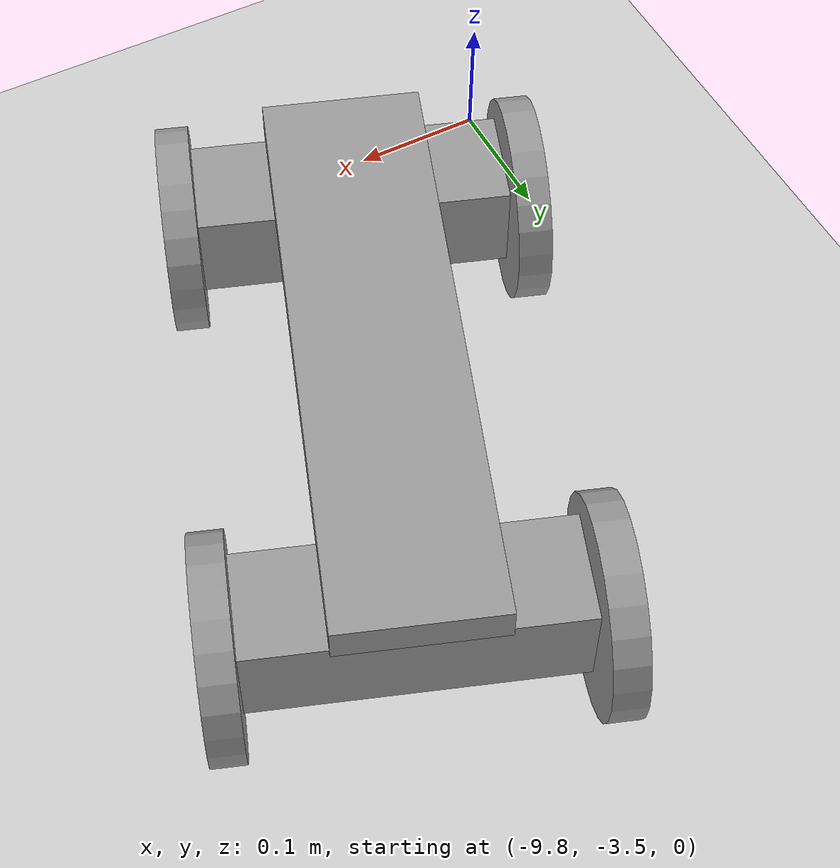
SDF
<sdf version="1.6">
 <world name="default">
  <model name="ground_plane">
   <static>1</static>
   <link name="link">
    <collision name="collision">
     <geometry><plane><normal>0 0 1</normal><size>100 100</size></plane></geometry>
     <surface><friction><ode><mu>100</mu><mu2>50</mu2></ode></friction></surface>
    </collision>
    <visual name="visual">
     <cast_shadows>0</cast_shadows>
     <geometry><plane><normal>0 0 1</normal><size>100 100</size></plane></geometry>
     <material>
      <script><uri>file://media/materials/scripts/gazebo.material</uri><name>Gazebo/Grey</name></script>
     </material>
    </visual>
   </link>
  </model>
  <model name="simple4wheel_0">
   <link name="link_0">
    <pose>0.207024 -0.003796 0.091671 0 -0 0</pose>
    <inertial>
     <mass>2</mass>
     <inertia>
      <ixx>1.72e-06</ixx>
      <ixy>0</ixy>
      <ixz>0</ixz>
      <iyy>2.368e-05</iyy>
      <iyz>0</iyz>
      <izz>2.522e-05</izz>
     </inertia>
    </inertial>
    <visual name="visual">
     <geometry><box><size>0.444653 0.117044 0.027544</size></box></geometry>
     <material>
      <lighting>1</lighting>
      <script><uri>file://media/materials/scripts/gazebo.material</uri><name>Gazebo/Grey</name></script>
      <ambient>0.3 0.3 0.3 1</ambient>
      <diffuse>0.7 0.7 0.7 1</diffuse>
      <specular>0.01 0.01 0.01 1</specular>
      <emissive>0 0 0 1</emissive>
      <shader type="vertex"><normal_map>__default__</normal_map></shader>
     </material>
    </visual>
    <collision name="collision">
     <geometry><box><size>0.444653 0.117044 0.027544</size></box></geometry>
     <surface>
      <friction>
       <ode><mu>1</mu><mu2>1</mu2><fdir1>0 0 0</fdir1><slip1>0</slip1><slip2>0</slip2></ode>
       <torsional>
        <coefficient>1</coefficient>
        <patch_radius>0</patch_radius>
        <surface_radius>0</surface_radius>
        <use_patch_radius>1</use_patch_radius>
        <ode><slip>0</slip></ode>
       </torsional>
      </friction>
      <bounce><restitution_coefficient>0</restitution_coefficient><threshold>1e+06</threshold></bounce>
      <contact>
       <collide_without_contact>0</collide_without_contact>
       <collide_without_contact_bitmask>1</collide_without_contact_bitmask>
       <collide_bitmask>1</collide_bitmask>
       <ode>
        <soft_cfm>0</soft_cfm>
        <soft_erp>0.2</soft_erp>
        <kp>1e+13</kp>
        <kd>1</kd>
        <max_vel>0.01</max_vel>
        <min_depth>0</min_depth>
       </ode>
       <bullet>
        <split_impulse>1</split_impulse>
        <split_impulse_penetration_threshold>-0.01</split_impulse_penetration_threshold>
        <soft_cfm>0</soft_cfm>
        <soft_erp>0.2</soft_erp>
        <kp>1e+13</kp>
        <kd>1</kd>
       </bullet>
      </contact>
     </surface>
    </collision>
   </link>
   <link name="link_1">
    <pose>0.382337 -0.003413 0.072755 0 -0 0</pose>
    <inertial>
     <mass>6.39095e-05</mass>
     <inertia>
      <ixx>2.5196e-08</ixx>
      <ixy>0</ixy>
      <ixz>0</ixz>
      <iyy>2.5196e-08</iyy>
      <iyz>0</iyz>
      <izz>4.92471e-08</izz>
     </inertia>
    </inertial>
    <visual name="visual">
     <geometry><cylinder><radius>0.0392577</radius><length>0.0103325</length></cylinder></geometry>
     <material>
      <lighting>1</lighting>
      <script><uri>file://media/materials/scripts/gazebo.material</uri><name>Gazebo/Grey</name></script>
      <ambient>0.3 0.3 0.3 1</ambient>
      <diffuse>0.7 0.7 0.7 1</diffuse>
      <specular>0.01 0.01 0.01 1</specular>
      <emissive>0 0 0 1</emissive>
     </material>
    </visual>
    <collision name="collision">
     <geometry><cylinder><radius>0.039258</radius><length>0.010332</length></cylinder></geometry>
     <surface>
      <friction>
       <ode><mu>1</mu><mu2>1</mu2><fdir1>0 0 0</fdir1><slip1>0</slip1><slip2>0</slip2></ode>
       <torsional>
        <coefficient>1</coefficient>
        <patch_radius>0</patch_radius>
        <surface_radius>0</surface_radius>
        <use_patch_radius>1</use_patch_radius>
        <ode><slip>0</slip></ode>
       </torsional>
      </friction>
      <bounce><restitution_coefficient>0</restitution_coefficient><threshold>1e+06</threshold></bounce>
      <contact>
       <collide_without_contact>0</collide_without_contact>
       <collide_without_contact_bitmask>1</collide_without_contact_bitmask>
       <collide_bitmask>1</collide_bitmask>
       <ode>
        <soft_cfm>0</soft_cfm>
        <soft_erp>0.2</soft_erp>
        <kp>1e+13</kp>
        <kd>1</kd>
        <max_vel>0.01</max_vel>
        <min_depth>0</min_depth>
       </ode>
       <bullet>
        <split_impulse>1</split_impulse>
        <split_impulse_penetration_threshold>-0.01</split_impulse_penetration_threshold>
        <soft_cfm>0</soft_cfm>
        <soft_erp>0.2</soft_erp>
        <kp>1e+13</kp>
        <kd>1</kd>
       </bullet>
      </contact>
     </surface>
    </collision>
   </link>
   <model name="wheel">
    <link name="link_1_clone">
     <pose>0.977304 -0.011272 0.197727 0 -0 0</pose>
     <inertial>
      <mass>0.665497</mass>
      <inertia>
       <ixx>0.00328415</ixx>
       <ixy>0</ixy>
       <ixz>0</ixz>
       <iyy>0.00382362</iyy>
       <iyz>0</iyz>
       <izz>0.00114194</izz>
      </inertia>
     </inertial>
     <visual name="visual">
      <geometry><box><size>0.077886 0.233056 0.073342</size></box></geometry>
      <material>
       <lighting>1</lighting>
       <script><uri>file://media/materials/scripts/gazebo.material</uri><name>Gazebo/Grey</name></script>
       <ambient>0.3 0.3 0.3 1</ambient>
       <diffuse>0.7 0.7 0.7 1</diffuse>
       <specular>0.01 0.01 0.01 1</specular>
       <emissive>0 0 0 1</emissive>
       <shader type="vertex"><normal_map>__default__</normal_map></shader>
      </material>
     </visual>
     <collision name="collision">
      <geometry><box><size>0.077886 0.233056 0.073342</size></box></geometry>
      <surface>
       <friction>
        <ode><mu>1</mu><mu2>1</mu2><fdir1>0 0 0</fdir1><slip1>0</slip1><slip2>0</slip2></ode>
        <torsional>
         <coefficient>1</coefficient>
         <patch_radius>0</patch_radius>
         <surface_radius>0</surface_radius>
         <use_patch_radius>1</use_patch_radius>
         <ode><slip>0</slip></ode>
        </torsional>
       </friction>
       <bounce><restitution_coefficient>0</restitution_coefficient><threshold>1e+06</threshold></bounce>
       <contact>
        <collide_without_contact>0</collide_without_contact>
        <collide_without_contact_bitmask>1</collide_without_contact_bitmask>
        <collide_bitmask>1</collide_bitmask>
        <ode>
         <soft_cfm>0</soft_cfm>
         <soft_erp>0.2</soft_erp>
         <kp>1e+13</kp>
         <kd>1</kd>
         <max_vel>0.01</max_vel>
         <min_depth>0</min_depth>
        </ode>
        <bullet>
         <split_impulse>1</split_impulse>
         <split_impulse_penetration_threshold>-0.01</split_impulse_penetration_threshold>
         <soft_cfm>0</soft_cfm>
         <soft_erp>0.2</soft_erp>
         <kp>1e+13</kp>
         <kd>1</kd>
        </bullet>
       </contact>
      </surface>
     </collision>
    </link>
    <link name="link_2_clone_0">
     <pose>0.96771 0.116414 0.19965 -1.5707 -0 -0</pose>
     <inertial>
      <mass>0.113164</mass>
      <inertia>
       <ixx>0.00447943</ixx>
       <ixy>0</ixy>
       <ixz>0</ixz>
       <iyy>0.00447943</iyy>
       <iyz>0</iyz>
       <izz>0.00824855</izz>
      </inertia>
     </inertial>
     <visual name="visual">
      <geometry><cylinder><radius>0.0763658</radius><length>0.0244675</length></cylinder></geometry>
      <material>
       <lighting>1</lighting>
       <script><uri>file://media/materials/scripts/gazebo.material</uri><name>Gazebo/Grey</name></script>
       <ambient>0.3 0.3 0.3 1</ambient>
       <diffuse>0.7 0.7 0.7 1</diffuse>
       <specular>0.01 0.01 0.01 1</specular>
       <emissive>0 0 0 1</emissive>
       <shader type="vertex"><normal_map>__default__</normal_map></shader>
      </material>
     </visual>
     <collision name="collision">
      <geometry><cylinder><radius>0.076366</radius><length>0.024468</length></cylinder></geometry>
      <surface>
       <friction>
        <ode><mu>1</mu><mu2>1</mu2><fdir1>0 0 0</fdir1><slip1>0</slip1><slip2>0</slip2></ode>
        <torsional>
         <coefficient>1</coefficient>
         <patch_radius>0</patch_radius>
         <surface_radius>0</surface_radius>
         <use_patch_radius>1</use_patch_radius>
         <ode><slip>0</slip></ode>
        </torsional>
       </friction>
       <bounce><restitution_coefficient>0</restitution_coefficient><threshold>1e+06</threshold></bounce>
       <contact>
        <collide_without_contact>0</collide_without_contact>
        <collide_without_contact_bitmask>1</collide_without_contact_bitmask>
        <collide_bitmask>1</collide_bitmask>
        <ode>
         <soft_cfm>0</soft_cfm>
         <soft_erp>0.2</soft_erp>
         <kp>1e+13</kp>
         <kd>1</kd>
         <max_vel>0.01</max_vel>
         <min_depth>0</min_depth>
        </ode>
        <bullet>
         <split_impulse>1</split_impulse>
         <split_impulse_penetration_threshold>-0.01</split_impulse_penetration_threshold>
         <soft_cfm>0</soft_cfm>
         <soft_erp>0.2</soft_erp>
         <kp>1e+13</kp>
         <kd>1</kd>
        </bullet>
       </contact>
      </surface>
     </collision>
    </link>
    <link name="link_2_clone_clone">
     <pose>0.967654 -0.140179 0.196376 1.5707 -0 0</pose>
     <inertial>
      <mass>0.147919</mass>
      <inertia>
       <ixx>0.00627331</ixx>
       <ixy>0</ixy>
       <ixz>0</ixz>
       <iyy>0.00627331</iyy>
       <iyz>0</iyz>
       <izz>0.0110311</izz>
      </inertia>
     </inertial>
     <visual name="visual">
      <geometry><cylinder><radius>0.076366</radius><length>0.024779</length></cylinder></geometry>
      <material>
       <lighting>1</lighting>
       <script><uri>file://media/materials/scripts/gazebo.material</uri><name>Gazebo/Grey</name></script>
       <ambient>0.3 0.3 0.3 1</ambient>
       <diffuse>0.7 0.7 0.7 1</diffuse>
       <specular>0.01 0.01 0.01 1</specular>
       <emissive>0 0 0 1</emissive>
       <shader type="vertex"><normal_map>__default__</normal_map></shader>
      </material>
     </visual>
     <collision name="collision">
      <geometry><cylinder><radius>0.076366</radius><length>0.024779</length></cylinder></geometry>
      <surface>
       <friction>
        <ode><mu>1</mu><mu2>1</mu2><fdir1>0 0 0</fdir1><slip1>0</slip1><slip2>0</slip2></ode>
        <torsional>
         <coefficient>1</coefficient>
         <patch_radius>0</patch_radius>
         <surface_radius>0</surface_radius>
         <use_patch_radius>1</use_patch_radius>
         <ode><slip>0</slip></ode>
        </torsional>
       </friction>
       <bounce><restitution_coefficient>0</restitution_coefficient><threshold>1e+06</threshold></bounce>
       <contact>
        <collide_without_contact>0</collide_without_contact>
        <collide_without_contact_bitmask>1</collide_without_contact_bitmask>
        <collide_bitmask>1</collide_bitmask>
        <ode>
         <soft_cfm>0</soft_cfm>
         <soft_erp>0.2</soft_erp>
         <kp>1e+13</kp>
         <kd>1</kd>
         <max_vel>0.01</max_vel>
         <min_depth>0</min_depth>
        </ode>
        <bullet>
         <split_impulse>1</split_impulse>
         <split_impulse_penetration_threshold>-0.01</split_impulse_penetration_threshold>
         <soft_cfm>0</soft_cfm>
         <soft_erp>0.2</soft_erp>
         <kp>1e+13</kp>
         <kd>1</kd>
        </bullet>
       </contact>
      </surface>
     </collision>
    </link>
    <joint name="link_1_clone_JOINT_14" type="revolute">
     <parent>link_1_clone</parent>
     <child>link_2_clone_clone</child>
     <axis>
      <xyz>0 0 1</xyz>
      <use_parent_model_frame>0</use_parent_model_frame>
      <limit>
       <lower>-1.79769e+308</lower>
       <upper>1.79769e+308</upper>
       <effort>-1</effort>
       <velocity>-1</velocity>
      </limit>
      <dynamics>
       <spring_reference>0</spring_reference>
       <spring_stiffness>0</spring_stiffness>
       <damping>0</damping>
       <friction>0</friction>
      </dynamics>
     </axis>
     <physics>
      <ode><limit><cfm>0</cfm><erp>0.2</erp></limit><suspension><cfm>0</cfm><erp>0.2</erp></suspension></ode>
     </physics>
    </joint>
    <joint name="link_1_clone_JOINT_15" type="revolute">
     <parent>link_1_clone</parent>
     <child>link_2_clone_0</child>
     <axis>
      <xyz>0 0 1</xyz>
      <use_parent_model_frame>0</use_parent_model_frame>
      <limit>
       <lower>-1.79769e+308</lower>
       <upper>1.79769e+308</upper>
       <effort>-1</effort>
       <velocity>-1</velocity>
      </limit>
      <dynamics>
       <spring_reference>0</spring_reference>
       <spring_stiffness>0</spring_stiffness>
       <damping>0</damping>
       <friction>0</friction>
      </dynamics>
     </axis>
     <physics>
      <ode><limit><cfm>0</cfm><erp>0.2</erp></limit><suspension><cfm>0</cfm><erp>0.2</erp></suspension></ode>
     </physics>
    </joint>
    <static>0</static>
    <pose>-0.589361 0.007286 -0.163823 0 -0 0</pose>
   </model>
   <model name="wheel_0">
    <link name="link_1_clone">
     <pose>0.977304 -0.011272 0.197727 0 -0 0</pose>
     <inertial>
      <mass>0.665497</mass>
      <inertia>
       <ixx>0.00328415</ixx>
       <ixy>0</ixy>
       <ixz>0</ixz>
       <iyy>0.00382362</iyy>
       <iyz>0</iyz>
       <izz>0.00114194</izz>
      </inertia>
     </inertial>
     <visual name="visual">
      <geometry><box><size>0.077886 0.233056 0.073342</size></box></geometry>
      <material>
       <lighting>1</lighting>
       <script><uri>file://media/materials/scripts/gazebo.material</uri><name>Gazebo/Grey</name></script>
       <ambient>0.3 0.3 0.3 1</ambient>
       <diffuse>0.7 0.7 0.7 1</diffuse>
       <specular>0.01 0.01 0.01 1</specular>
       <emissive>0 0 0 1</emissive>
       <shader type="vertex"><normal_map>__default__</normal_map></shader>
      </material>
     </visual>
     <collision name="collision">
      <geometry><box><size>0.077886 0.233056 0.073342</size></box></geometry>
      <surface>
       <friction>
        <ode><mu>1</mu><mu2>1</mu2><fdir1>0 0 0</fdir1><slip1>0</slip1><slip2>0</slip2></ode>
        <torsional>
         <coefficient>1</coefficient>
         <patch_radius>0</patch_radius>
         <surface_radius>0</surface_radius>
         <use_patch_radius>1</use_patch_radius>
         <ode><slip>0</slip></ode>
        </torsional>
       </friction>
       <bounce><restitution_coefficient>0</restitution_coefficient><threshold>1e+06</threshold></bounce>
       <contact>
        <collide_without_contact>0</collide_without_contact>
        <collide_without_contact_bitmask>1</collide_without_contact_bitmask>
        <collide_bitmask>1</collide_bitmask>
        <ode>
         <soft_cfm>0</soft_cfm>
         <soft_erp>0.2</soft_erp>
         <kp>1e+13</kp>
         <kd>1</kd>
         <max_vel>0.01</max_vel>
         <min_depth>0</min_depth>
        </ode>
        <bullet>
         <split_impulse>1</split_impulse>
         <split_impulse_penetration_threshold>-0.01</split_impulse_penetration_threshold>
         <soft_cfm>0</soft_cfm>
         <soft_erp>0.2</soft_erp>
         <kp>1e+13</kp>
         <kd>1</kd>
        </bullet>
       </contact>
      </surface>
     </collision>
    </link>
    <link name="link_2_clone_0">
     <pose>0.96771 0.116414 0.19965 -1.5707 -0 -0</pose>
     <inertial>
      <mass>0.113164</mass>
      <inertia>
       <ixx>0.00447943</ixx>
       <ixy>0</ixy>
       <ixz>0</ixz>
       <iyy>0.00447943</iyy>
       <iyz>0</iyz>
       <izz>0.00824855</izz>
      </inertia>
     </inertial>
     <visual name="visual">
      <geometry><cylinder><radius>0.0763658</radius><length>0.0244675</length></cylinder></geometry>
      <material>
       <lighting>1</lighting>
       <script><uri>file://media/materials/scripts/gazebo.material</uri><name>Gazebo/Grey</name></script>
       <ambient>0.3 0.3 0.3 1</ambient>
       <diffuse>0.7 0.7 0.7 1</diffuse>
       <specular>0.01 0.01 0.01 1</specular>
       <emissive>0 0 0 1</emissive>
       <shader type="vertex"><normal_map>__default__</normal_map></shader>
      </material>
     </visual>
     <collision name="collision">
      <geometry><cylinder><radius>0.076366</radius><length>0.024468</length></cylinder></geometry>
      <surface>
       <friction>
        <ode><mu>1</mu><mu2>1</mu2><fdir1>0 0 0</fdir1><slip1>0</slip1><slip2>0</slip2></ode>
        <torsional>
         <coefficient>1</coefficient>
         <patch_radius>0</patch_radius>
         <surface_radius>0</surface_radius>
         <use_patch_radius>1</use_patch_radius>
         <ode><slip>0</slip></ode>
        </torsional>
       </friction>
       <bounce><restitution_coefficient>0</restitution_coefficient><threshold>1e+06</threshold></bounce>
       <contact>
        <collide_without_contact>0</collide_without_contact>
        <collide_without_contact_bitmask>1</collide_without_contact_bitmask>
        <collide_bitmask>1</collide_bitmask>
        <ode>
         <soft_cfm>0</soft_cfm>
         <soft_erp>0.2</soft_erp>
         <kp>1e+13</kp>
         <kd>1</kd>
         <max_vel>0.01</max_vel>
         <min_depth>0</min_depth>
        </ode>
        <bullet>
         <split_impulse>1</split_impulse>
         <split_impulse_penetration_threshold>-0.01</split_impulse_penetration_threshold>
         <soft_cfm>0</soft_cfm>
         <soft_erp>0.2</soft_erp>
         <kp>1e+13</kp>
         <kd>1</kd>
        </bullet>
       </contact>
      </surface>
     </collision>
    </link>
    <link name="link_2_clone_clone">
     <pose>0.967654 -0.140179 0.196376 1.5707 -0 0</pose>
     <inertial>
      <mass>0.147919</mass>
      <inertia>
       <ixx>0.00627331</ixx>
       <ixy>0</ixy>
       <ixz>0</ixz>
       <iyy>0.00627331</iyy>
       <iyz>0</iyz>
       <izz>0.0110311</izz>
      </inertia>
     </inertial>
     <visual name="visual">
      <geometry><cylinder><radius>0.076366</radius><length>0.024779</length></cylinder></geometry>
      <material>
       <lighting>1</lighting>
       <script><uri>file://media/materials/scripts/gazebo.material</uri><name>Gazebo/Grey</name></script>
       <ambient>0.3 0.3 0.3 1</ambient>
       <diffuse>0.7 0.7 0.7 1</diffuse>
       <specular>0.01 0.01 0.01 1</specular>
       <emissive>0 0 0 1</emissive>
       <shader type="vertex"><normal_map>__default__</normal_map></shader>
      </material>
     </visual>
     <collision name="collision">
      <geometry><cylinder><radius>0.076366</radius><length>0.024779</length></cylinder></geometry>
      <surface>
       <friction>
        <ode><mu>1</mu><mu2>1</mu2><fdir1>0 0 0</fdir1><slip1>0</slip1><slip2>0</slip2></ode>
        <torsional>
         <coefficient>1</coefficient>
         <patch_radius>0</patch_radius>
         <surface_radius>0</surface_radius>
         <use_patch_radius>1</use_patch_radius>
         <ode><slip>0</slip></ode>
        </torsional>
       </friction>
       <bounce><restitution_coefficient>0</restitution_coefficient><threshold>1e+06</threshold></bounce>
       <contact>
        <collide_without_contact>0</collide_without_contact>
        <collide_without_contact_bitmask>1</collide_without_contact_bitmask>
        <collide_bitmask>1</collide_bitmask>
        <ode>
         <soft_cfm>0</soft_cfm>
         <soft_erp>0.2</soft_erp>
         <kp>1e+13</kp>
         <kd>1</kd>
         <max_vel>0.01</max_vel>
         <min_depth>0</min_depth>
        </ode>
        <bullet>
         <split_impulse>1</split_impulse>
         <split_impulse_penetration_threshold>-0.01</split_impulse_penetration_threshold>
         <soft_cfm>0</soft_cfm>
         <soft_erp>0.2</soft_erp>
         <kp>1e+13</kp>
         <kd>1</kd>
        </bullet>
       </contact>
      </surface>
     </collision>
    </link>
    <joint name="link_1_clone_JOINT_14" type="revolute">
     <parent>link_1_clone</parent>
     <child>link_2_clone_clone</child>
     <axis>
      <xyz>0 0 1</xyz>
      <use_parent_model_frame>0</use_parent_model_frame>
      <limit>
       <lower>-1.79769e+308</lower>
       <upper>1.79769e+308</upper>
       <effort>-1</effort>
       <velocity>-1</velocity>
      </limit>
      <dynamics>
       <spring_reference>0</spring_reference>
       <spring_stiffness>0</spring_stiffness>
       <damping>0</damping>
       <friction>0</friction>
      </dynamics>
     </axis>
     <physics>
      <ode><limit><cfm>0</cfm><erp>0.2</erp></limit><suspension><cfm>0</cfm><erp>0.2</erp></suspension></ode>
     </physics>
    </joint>
    <joint name="link_1_clone_JOINT_15" type="revolute">
     <parent>link_1_clone</parent>
     <child>link_2_clone_0</child>
     <axis>
      <xyz>0 0 1</xyz>
      <use_parent_model_frame>0</use_parent_model_frame>
      <limit>
       <lower>-1.79769e+308</lower>
       <upper>1.79769e+308</upper>
       <effort>-1</effort>
       <velocity>-1</velocity>
      </limit>
      <dynamics>
       <spring_reference>0</spring_reference>
       <spring_stiffness>0</spring_stiffness>
       <damping>0</damping>
       <friction>0</friction>
      </dynamics>
     </axis>
     <physics>
      <ode><limit><cfm>0</cfm><erp>0.2</erp></limit><suspension><cfm>0</cfm><erp>0.2</erp></suspension></ode>
     </physics>
    </joint>
    <static>0</static>
    <pose>-0.949919 0.008977 -0.15558 0 -0 0</pose>
   </model>
   <joint name="link_0_JOINT_1" type="revolute">
    <parent>link_0</parent>
    <child>link_1</child>
    <axis>
     <xyz>0 0 -1</xyz>
     <use_parent_model_frame>0</use_parent_model_frame>
     <limit>
      <lower>-1.79769e+308</lower>
      <upper>1.79769e+308</upper>
      <effort>-1</effort>
      <velocity>-1</velocity>
     </limit>
     <dynamics>
      <spring_reference>0</spring_reference>
      <spring_stiffness>0</spring_stiffness>
      <damping>0</damping>
      <friction>0</friction>
     </dynamics>
    </axis>
    <physics>
     <ode><limit><cfm>0</cfm><erp>0.2</erp></limit><suspension><cfm>0</cfm><erp>0.2</erp></suspension></ode>
    </physics>
   </joint>
   <joint name="link_0_JOINT_2" type="fixed">
    <parent>link_0</parent>
    <child>wheel_0::link_1_clone</child>
    <physics>
     <ode><limit><cfm>0</cfm><erp>0.2</erp></limit><suspension><cfm>0</cfm><erp>0.2</erp></suspension></ode>
    </physics>
   </joint>
   <joint name="link_1_clone_JOINT_0" type="fixed">
    <parent>wheel::link_1_clone</parent>
    <child>link_1</child>
    <physics>
     <ode><limit><cfm>0</cfm><erp>0.2</erp></limit><suspension><cfm>0</cfm><erp>0.2</erp></suspension></ode>
    </physics>
   </joint>
   <static>0</static>
   <pose>-9.50306 -3.04262 0.032025 -0.013 -0.017373 -1.9218</pose>
  </model>
 </world>
</sdf>
